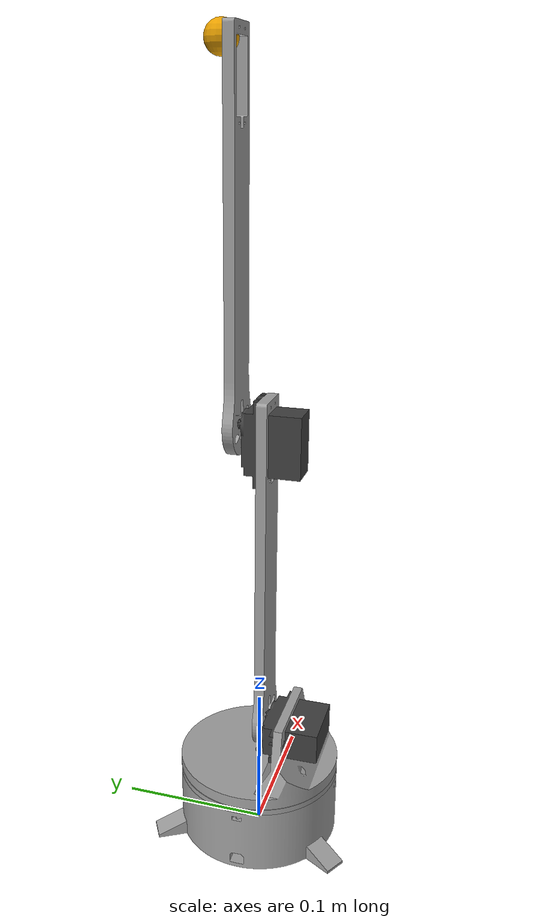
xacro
<?xml version="1.0"?>
<!-- Revolute-Revolute Manipulator -->
<!--
Copied and modified from ROS1 example -
https://github.com/ros-simulation/gazebo_ros_demos/blob/kinetic-devel/rrbot_description/urdf/rrbot.xacro
-->
<robot xmlns:xacro="http://www.ros.org/wiki/xacro" name="2dof_robot">
  <xacro:arg name="prefix" default="" />

  <!-- Import RRBot macro -->
  <xacro:include filename="$(find rrbot_ros2_system)/description/urdf/servobot_description.xacro" />

  <!-- Import Rviz colors -->
  <xacro:include filename="$(find rrbot_ros2_system)/description/urdf/materials.xacro" />

  <!-- Import RRBot ros2_control description -->
  <xacro:include filename="$(find rrbot_ros2_system)/description/ros2_control/servobot.ros2_control.xacro" />

  <!-- Used for fixing robot -->
  <link name="world"/>

  <xacro:servobot parent="world" prefix="$(arg prefix)">
    <origin xyz="0 0 0" rpy="0 0 0" />
  </xacro:servobot>

  <xacro:servobot_ros2_control
    name="ServoBot" prefix="$(arg prefix)" />

</robot>

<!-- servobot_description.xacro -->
<robot xmlns:xacro="http://www.ros.org/wiki/xacro">

  <xacro:macro name="servobot" params="parent prefix *origin">

  <xacro:include filename="$(find rrbot_ros2_system)/description/urdf/servobot.trans" />
  <link name="${prefix}base_link">
    <inertial>
      <origin xyz="0.0005169259842484936 4.927774522263481e-07 0.0185514383477924" rpy="0 0 0"/>
      <mass value="1.3063261167533025"/>
      <inertia ixx="0.001709" iyy="0.001736" izz="0.002971" ixy="-0.0" iyz="-0.0" ixz="4e-06"/>
    </inertial>
    <visual>
      <origin xyz="0 0 0" rpy="0 0 0"/>
      <geometry>
        <mesh filename="package://rrbot_ros2_system/meshes/base_link.stl" scale="0.001 0.001 0.001"/>
      </geometry>
      <material name="steel_satin"/>
    </visual>
    <collision>
      <origin xyz="0 0 0" rpy="0 0 0"/>
      <geometry>
        <mesh filename="package://rrbot_ros2_system/meshes/base_link.stl" scale="0.001 0.001 0.001"/>
      </geometry>
    </collision>
  </link>

  <link name="${prefix}link1_1">
    <inertial>
      <origin xyz="-0.001085236831239781 -0.007802435833620399 0.010098622999995588" rpy="0 0 0"/>
      <mass value="0.856114888950798"/>
      <inertia ixx="0.00064" iyy="0.000677" izz="0.001178" ixy="-1.4e-05" iyz="6.4e-05" ixz="1.2e-05"/>
    </inertial>
    <visual>
      <origin xyz="0.0 0.0 -0.0475" rpy="0 0 0"/>
      <geometry>
        <mesh filename="package://rrbot_ros2_system/meshes/link1_1.stl" scale="0.001 0.001 0.001"/>
      </geometry>
      <material name="steel_satin"/>
    </visual>
    <collision>
      <origin xyz="0.0 0.0 -0.0475" rpy="0 0 0"/>
      <geometry>
        <mesh filename="package://rrbot_ros2_system/meshes/link1_1.stl" scale="0.001 0.001 0.001"/>
      </geometry>
    </collision>
  </link>

  <link name="${prefix}base_enclosure_1">
    <inertial>
      <origin xyz="2.4605362489746613e-15 0.051499999999999976 0.0019771225490889874" rpy="0 0 0"/>
      <mass value="0.25288882419654"/>
      <inertia ixx="0.000217" iyy="0.000217" izz="0.000433" ixy="-0.0" iyz="0.0" ixz="-0.0"/>
    </inertial>
    <visual>
      <origin xyz="0.0 0.0515 -0.0448" rpy="0 0 0"/>
      <geometry>
        <mesh filename="package://rrbot_ros2_system/meshes/base_enclosure_1.stl" scale="0.001 0.001 0.001"/>
      </geometry>
      <material name="steel_satin"/>
    </visual>
    <collision>
      <origin xyz="0.0 0.0515 -0.0448" rpy="0 0 0"/>
      <geometry>
        <mesh filename="package://rrbot_ros2_system/meshes/base_enclosure_1.stl" scale="0.001 0.001 0.001"/>
      </geometry>
    </collision>
  </link>

  <link name="${prefix}servo2_1">
    <inertial>
      <origin xyz="0.02438234374963684 -0.008097752979871475 0.005000000000000032" rpy="0 0 0"/>
      <mass value="0.2557057360993377"/>
      <inertia ixx="4e-05" iyy="4.6e-05" izz="6.9e-05" ixy="-1e-06" iyz="-0.0" ixz="-0.0"/>
    </inertial>
    <visual>
      <origin xyz="0.0341 0.02 -0.0819" rpy="0 0 0"/>
      <geometry>
        <mesh filename="package://rrbot_ros2_system/meshes/servo2_1.stl" scale="0.001 0.001 0.001"/>
      </geometry>
      <material name="nylon_12_with_formlabs_fuse_1_3d_printer"/>
    </visual>
    <collision>
      <origin xyz="0.0341 0.02 -0.0819" rpy="0 0 0"/>
      <geometry>
        <mesh filename="package://rrbot_ros2_system/meshes/servo2_1.stl" scale="0.001 0.001 0.001"/>
      </geometry>
    </collision>
  </link>

  <link name="${prefix}link2_1">
    <inertial>
      <origin xyz="4.847810769320363e-05 0.0016252000933083266 0.0912675284128768" rpy="0 0 0"/>
      <mass value="0.33447882881560465"/>
      <inertia ixx="0.001416" iyy="0.001442" izz="2.9e-05" ixy="0.0" iyz="2e-06" ixz="1e-06"/>
    </inertial>
    <visual>
      <origin xyz="-0.00015 0.005 -0.0869" rpy="0 0 0"/>
      <geometry>
        <mesh filename="package://rrbot_ros2_system/meshes/link2_1.stl" scale="0.001 0.001 0.001"/>
      </geometry>
      <material name="steel_satin"/>
    </visual>
    <collision>
      <origin xyz="-0.00015 0.005 -0.0869" rpy="0 0 0"/>
      <geometry>
        <mesh filename="package://rrbot_ros2_system/meshes/link2_1.stl" scale="0.001 0.001 0.001"/>
      </geometry>
    </collision>
  </link>

  <link name="${prefix}servo3_1">
    <inertial>
      <origin xyz="0.005000000000000005 -0.008097752979871468 0.024382343749636937" rpy="0 0 0"/>
      <mass value="0.2557057360993377"/>
      <inertia ixx="6.9e-05" iyy="4.6e-05" izz="4e-05" ixy="0.0" iyz="-1e-06" ixz="-0.0"/>
    </inertial>
    <visual>
      <origin xyz="0.005 0.0 -0.2628" rpy="0 0 0"/>
      <geometry>
        <mesh filename="package://rrbot_ros2_system/meshes/servo3_1.stl" scale="0.001 0.001 0.001"/>
      </geometry>
      <material name="nylon_12_with_formlabs_fuse_1_3d_printer"/>
    </visual>
    <collision>
      <origin xyz="0.005 0.0 -0.2628" rpy="0 0 0"/>
      <geometry>
        <mesh filename="package://rrbot_ros2_system/meshes/servo3_1.stl" scale="0.001 0.001 0.001"/>
      </geometry>
    </collision>
  </link>

  <link name="${prefix}link3_1">
    <inertial>
      <origin xyz="4.847810769323828e-05 0.001625200093308344 0.09126752841287683" rpy="0 0 0"/>
      <mass value="0.33447882881560465"/>
      <inertia ixx="0.001416" iyy="0.001442" izz="2.9e-05" ixy="0.0" iyz="2e-06" ixz="1e-06"/>
    </inertial>
    <visual>
      <origin xyz="0.0 -0.015 -0.29705" rpy="0 0 0"/>
      <geometry>
        <mesh filename="package://rrbot_ros2_system/meshes/link3_1.stl" scale="0.001 0.001 0.001"/>
      </geometry>
      <material name="steel_satin"/>
    </visual>
    <collision>
      <origin xyz="0.0 -0.015 -0.29705" rpy="0 0 0"/>
      <geometry>
        <mesh filename="package://rrbot_ros2_system/meshes/link3_1.stl" scale="0.001 0.001 0.001"/>
      </geometry>
    </collision>
  </link>

  <link name="${prefix}effector">
    <visual>
      <origin xyz="0.0 0.005 0.0" rpy="0 0 0"/>
      <geometry>
        <sphere radius="0.01">
        </sphere>
      </geometry>
    </visual>
    <collision>
      <origin xyz="0.0 0.005 0.0" rpy="0 0 0"/>
      <geometry>
        <sphere radius="0.01">
        </sphere>
      </geometry>
    </collision>
  </link>

  <joint name="${prefix}base_joint" type="fixed">
    <xacro:insert_block name="origin" />
    <parent link="${parent}"/>
    <child link="${prefix}base_link" />
  </joint>

  <joint name="${prefix}joint1" type="revolute">
    <origin xyz="0.0 0.0515 0.0027" rpy="0 0 0"/>
    <parent link="${prefix}base_enclosure_1"/>
    <child link="${prefix}link1_1"/>
    <axis xyz="0.0 0.0 1.0"/>
    <limit effort="1.55" velocity="${2*pi}" lower="-${pi/2}" upper="${pi/2}" />
  </joint>

  <joint name="${prefix}base_enclosure" type="fixed">
    <origin xyz="0.0 -0.0515 0.0448" rpy="0 0 0"/>
    <parent link="${prefix}base_link"/>
    <child link="${prefix}base_enclosure_1"/>
  </joint>

  <joint name="${prefix}link1_servo2" type="fixed">
    <origin xyz="-0.0341 -0.02 0.0344" rpy="0 0 0"/>
    <parent link="${prefix}link1_1"/>
    <child link="${prefix}servo2_1"/>
  </joint>

  <joint name="${prefix}joint2" type="revolute">
    <origin xyz="0.03425 0.015 0.005" rpy="0 0 0"/>
    <parent link="${prefix}servo2_1"/>
    <child link="${prefix}link2_1"/>
    <axis xyz="0.0 -1.0 0.0"/>
    <limit effort="1.55" velocity="${2*pi}" lower="-${pi/2}" upper="${pi/2}" />
  </joint>

  <joint name="${prefix}link2_servo3" type="fixed">
    <origin xyz="-0.00515 0.005 0.1759" rpy="0 0 0"/>
    <parent link="${prefix}link2_1"/>
    <child link="${prefix}servo3_1"/>
  </joint>

  <joint name="${prefix}joint3" type="revolute">
    <origin xyz="0.005 0.015 0.03425" rpy="0 0 0"/>
    <parent link="${prefix}servo3_1"/>
    <child link="${prefix}link3_1"/>
    <axis xyz="0.0 -1.0 0.0"/>
    <limit effort="1.55" velocity="${2*pi}" lower="-${pi/2}" upper="${pi/2}" />
  </joint>

  <joint name="${prefix}effector_link2" type="fixed">
    <origin xyz="0.0 0.005 0.22" rpy="0 0 0"/>
    <parent link="${prefix}link3_1"/>
    <child link="${prefix}effector"/>
  </joint>

  </xacro:macro>

</robot>

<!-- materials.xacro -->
<robot name="servobot" xmlns:xacro="http://www.ros.org/wiki/xacro" >

<material name="silver_defaulted_error_pls">
  <color rgba="0.700 0.700 0.710 1.000"/>
</material>
<material name="steel_satin">
  <color rgba="0.6274509803921569 0.6274509803921569 0.6274509803921569 1.0"/>
</material>
<material name="nylon_12_with_formlabs_fuse_1_3d_printer">
  <color rgba="0.24705882352941178 0.24705882352941178 0.24705882352941178 1.0"/>
</material>

</robot>
